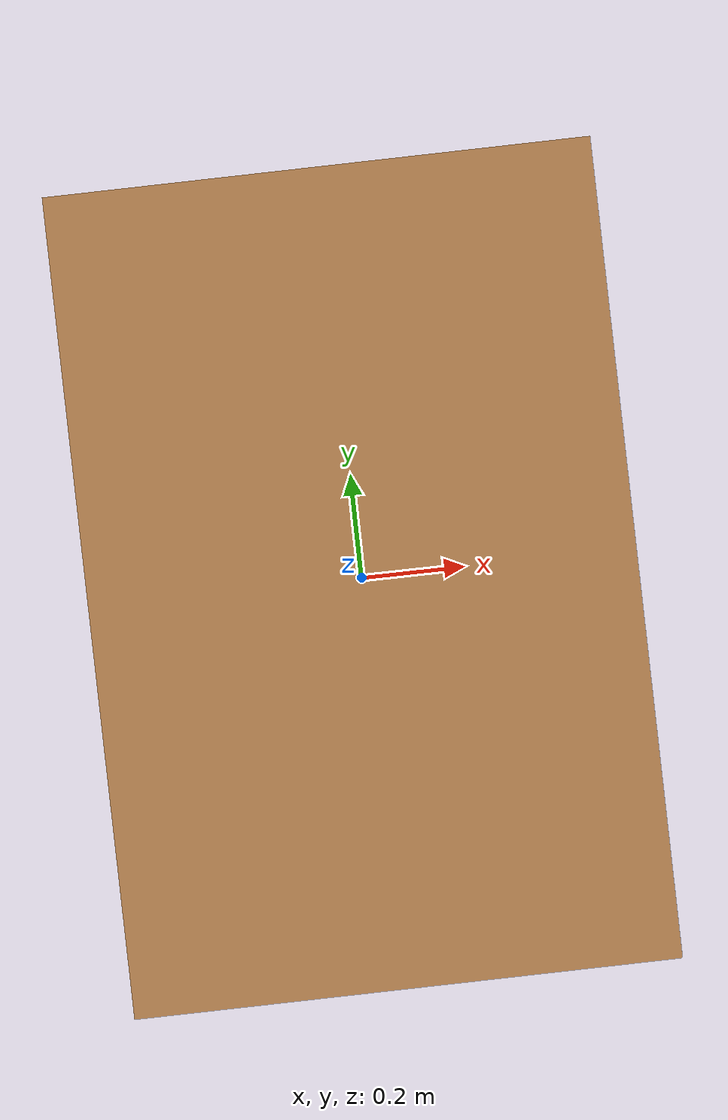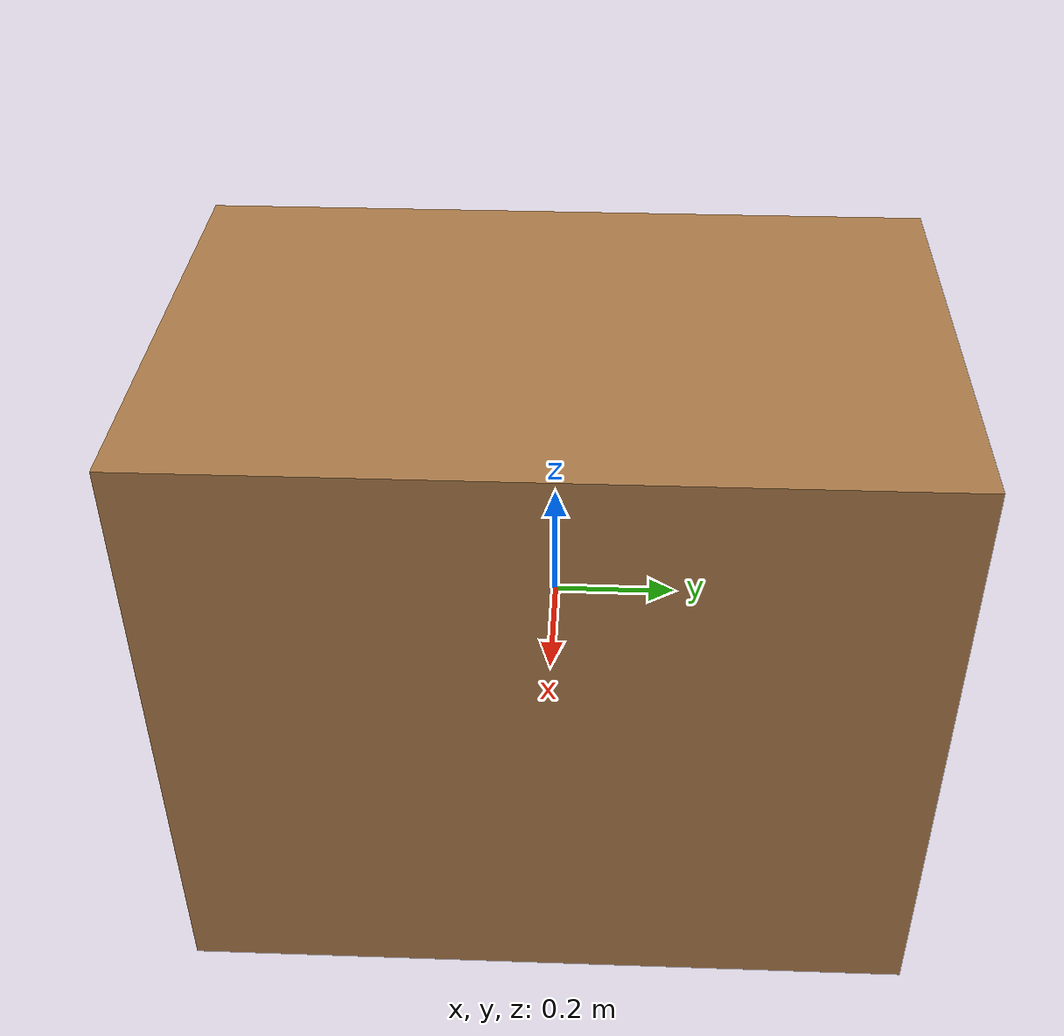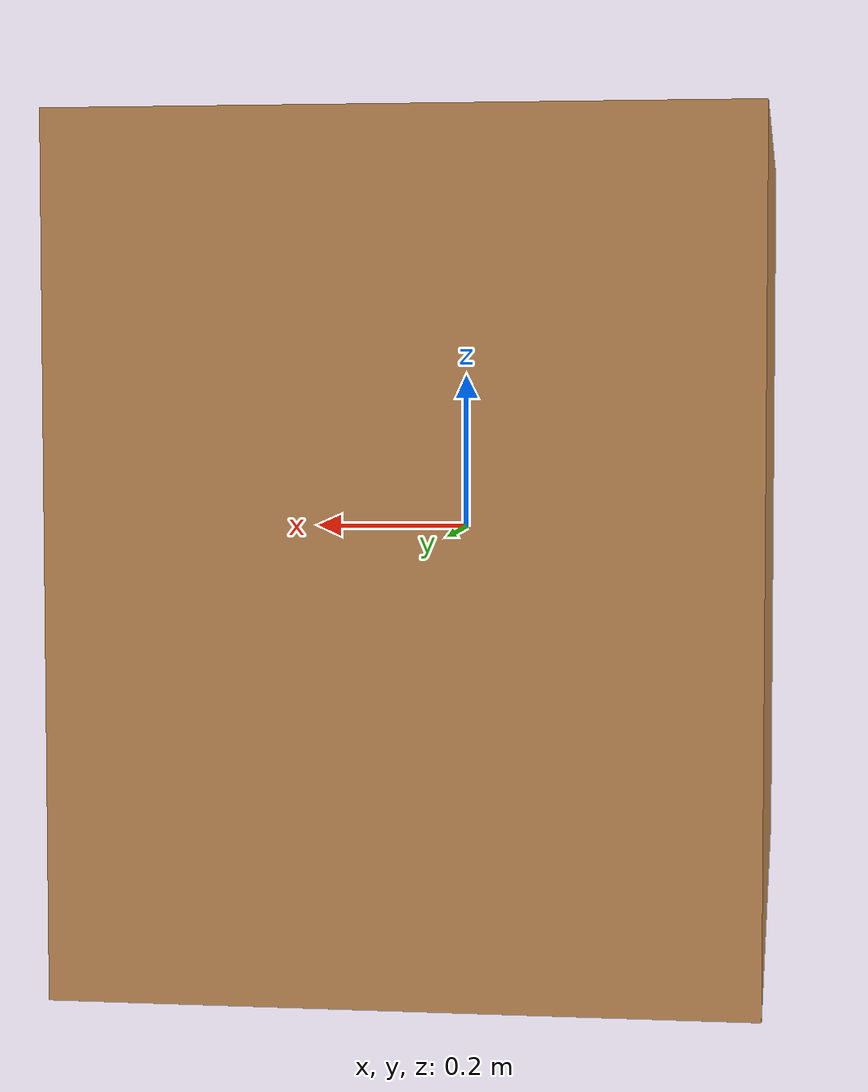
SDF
<?xml version="1.0" ?>
<sdf version="1.6">
  <model name="work_table">
    <static>true</static>
    <link name="link">
      <collision name="collision">
        <geometry>
          <box>
            <size>0.8 1.2 1.0</size>
          </box>
        </geometry>
        <surface>
          <friction>
            <ode>
              <mu>2.0</mu>
              <mu2>2.0</mu2>
            </ode>
          </friction>
          <contact>
            <ode>
              <!-- Very stiff surface — must be stiffer than fingers (1e8)
                   so pieces cannot be pushed through the table. -->
              <kp>1000000000.0</kp>
              <kd>1000.0</kd>
              <min_depth>0.0001</min_depth>
              <max_vel>0.1</max_vel>
            </ode>
          </contact>
        </surface>
      </collision>
      <visual name="visual">
        <geometry>
          <box>
            <size>0.8 1.2 1.0</size>
          </box>
        </geometry>
        <material>
          <script>
            <uri>file://media/materials/scripts/gazebo.material</uri>
            <name>Gazebo/Wood</name>
          </script>
        </material>
      </visual>
    </link>
  </model>
</sdf>
